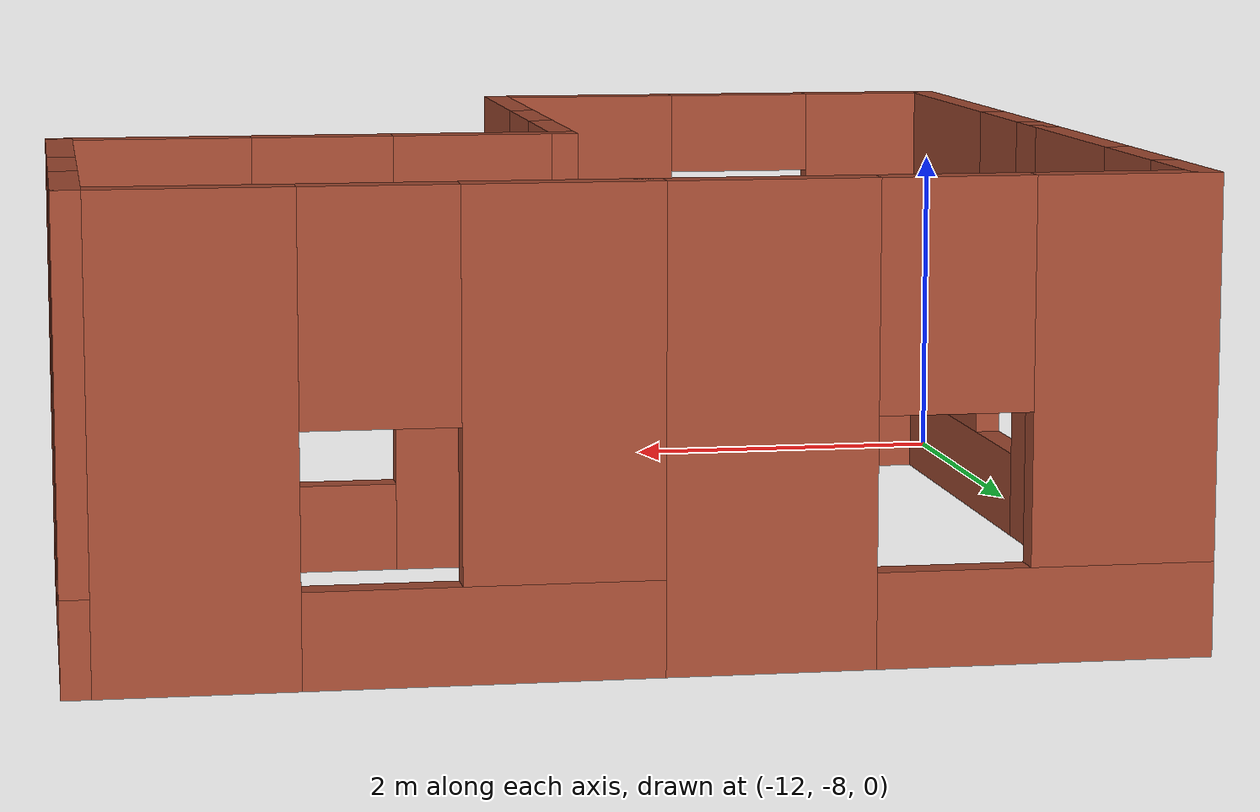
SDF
<?xml version='1.0'?>
<sdf version='1.6'>
  <model name='home.sdf'>
    <pose frame=''>-8.9356 -4.4642 0 0 -0 0</pose>
    <link name='Wall_0'>
      <pose frame=''>-2.85 1.425 0 0 -0 -1.5708</pose>
      <visual name='Wall_0_Visual_0'>
        <pose frame=''>-1.14136 0 1.25 0 -0 0</pose>
        <geometry>
          <box>
            <size>0.71728 0.15 2.5</size>
          </box>
        </geometry>
        <material>
          <script>
            <uri>file://media/materials/scripts/gazebo.material</uri>
            <name>Gazebo/Bricks</name>
          </script>
          <ambient>1 1 1 1</ambient>
        </material>
        <meta>
          <layer>0</layer>
        </meta>
      </visual>
      <collision name='Wall_0_Collision_0'>
        <geometry>
          <box>
            <size>0.71728 0.15 2.5</size>
          </box>
        </geometry>
        <pose frame=''>-1.14136 0 1.25 0 -0 0</pose>
      </collision>
      <visual name='Wall_0_Visual_1'>
        <pose frame=''>0.35864 0 0.25 0 -0 0</pose>
        <geometry>
          <box>
            <size>2.28272 0.15 0.5</size>
          </box>
        </geometry>
        <material>
          <script>
            <uri>file://media/materials/scripts/gazebo.material</uri>
            <name>Gazebo/Bricks</name>
          </script>
          <ambient>1 1 1 1</ambient>
        </material>
        <meta>
          <layer>0</layer>
        </meta>
      </visual>
      <collision name='Wall_0_Collision_1'>
        <geometry>
          <box>
            <size>2.28272 0.15 0.5</size>
          </box>
        </geometry>
        <pose frame=''>0.35864 0 0.25 0 -0 0</pose>
      </collision>
      <visual name='Wall_0_Visual_2'>
        <pose frame=''>0.75864 0 1.5 0 -0 0</pose>
        <geometry>
          <box>
            <size>1.48272 0.15 2</size>
          </box>
        </geometry>
        <material>
          <script>
            <uri>file://media/materials/scripts/gazebo.material</uri>
            <name>Gazebo/Bricks</name>
          </script>
          <ambient>1 1 1 1</ambient>
        </material>
        <meta>
          <layer>0</layer>
        </meta>
      </visual>
      <collision name='Wall_0_Collision_2'>
        <geometry>
          <box>
            <size>1.48272 0.15 2</size>
          </box>
        </geometry>
        <pose frame=''>0.75864 0 1.5 0 -0 0</pose>
      </collision>
      <visual name='Wall_0_Visual_3'>
        <pose frame=''>-0.38272 0 1.9 0 -0 0</pose>
        <geometry>
          <box>
            <size>0.8 0.15 1.2</size>
          </box>
        </geometry>
        <material>
          <script>
            <uri>file://media/materials/scripts/gazebo.material</uri>
            <name>Gazebo/Bricks</name>
          </script>
          <ambient>1 1 1 1</ambient>
        </material>
        <meta>
          <layer>0</layer>
        </meta>
      </visual>
      <collision name='Wall_0_Collision_3'>
        <geometry>
          <box>
            <size>0.8 0.15 1.2</size>
          </box>
        </geometry>
        <pose frame=''>-0.38272 0 1.9 0 -0 0</pose>
      </collision>
    </link>
    <link name='Wall_10'>
      <pose frame=''>1.425 2.85 0 0 -0 3.14159</pose>
      <visual name='Wall_10_Visual_0'>
        <pose frame=''>-0.910917 0 1.25 0 -0 0</pose>
        <geometry>
          <box>
            <size>1.17816 0.15 2.5</size>
          </box>
        </geometry>
        <material>
          <script>
            <uri>file://media/materials/scripts/gazebo.material</uri>
            <name>Gazebo/Bricks</name>
          </script>
          <ambient>1 1 1 1</ambient>
        </material>
        <meta>
          <layer>0</layer>
        </meta>
      </visual>
      <collision name='Wall_10_Collision_0'>
        <geometry>
          <box>
            <size>1.17816 0.15 2.5</size>
          </box>
        </geometry>
        <pose frame=''>-0.910917 0 1.25 0 -0 0</pose>
      </collision>
      <visual name='Wall_10_Visual_1'>
        <pose frame=''>0.589083 0 0.25 0 -0 0</pose>
        <geometry>
          <box>
            <size>1.82184 0.15 0.5</size>
          </box>
        </geometry>
        <material>
          <script>
            <uri>file://media/materials/scripts/gazebo.material</uri>
            <name>Gazebo/Bricks</name>
          </script>
          <ambient>1 1 1 1</ambient>
        </material>
        <meta>
          <layer>0</layer>
        </meta>
      </visual>
      <collision name='Wall_10_Collision_1'>
        <geometry>
          <box>
            <size>1.82184 0.15 0.5</size>
          </box>
        </geometry>
        <pose frame=''>0.589083 0 0.25 0 -0 0</pose>
      </collision>
      <visual name='Wall_10_Visual_2'>
        <pose frame=''>0.989083 0 1.5 0 -0 0</pose>
        <geometry>
          <box>
            <size>1.02184 0.15 2</size>
          </box>
        </geometry>
        <material>
          <script>
            <uri>file://media/materials/scripts/gazebo.material</uri>
            <name>Gazebo/Bricks</name>
          </script>
          <ambient>1 1 1 1</ambient>
        </material>
        <meta>
          <layer>0</layer>
        </meta>
      </visual>
      <collision name='Wall_10_Collision_2'>
        <geometry>
          <box>
            <size>1.02184 0.15 2</size>
          </box>
        </geometry>
        <pose frame=''>0.989083 0 1.5 0 -0 0</pose>
      </collision>
      <visual name='Wall_10_Visual_3'>
        <pose frame=''>0.078165 0 1.9 0 -0 0</pose>
        <geometry>
          <box>
            <size>0.8 0.15 1.2</size>
          </box>
        </geometry>
        <material>
          <script>
            <uri>file://media/materials/scripts/gazebo.material</uri>
            <name>Gazebo/Bricks</name>
          </script>
          <ambient>1 1 1 1</ambient>
        </material>
        <meta>
          <layer>0</layer>
        </meta>
      </visual>
      <collision name='Wall_10_Collision_3'>
        <geometry>
          <box>
            <size>0.8 0.15 1.2</size>
          </box>
        </geometry>
        <pose frame=''>0.078165 0 1.9 0 -0 0</pose>
      </collision>
    </link>
    <link name='Wall_3'>
      <pose frame=''>-1.425 2.85 0 0 -0 3.14159</pose>
      <visual name='Wall_3_Visual_0'>
        <pose frame=''>-0.884242 0 1.25 0 -0 0</pose>
        <geometry>
          <box>
            <size>1.23152 0.15 2.5</size>
          </box>
        </geometry>
        <material>
          <script>
            <uri>file://media/materials/scripts/gazebo.material</uri>
            <name>Gazebo/Bricks</name>
          </script>
          <ambient>1 1 1 1</ambient>
        </material>
        <meta>
          <layer>0</layer>
        </meta>
      </visual>
      <collision name='Wall_3_Collision_0'>
        <geometry>
          <box>
            <size>1.23152 0.15 2.5</size>
          </box>
        </geometry>
        <pose frame=''>-0.884242 0 1.25 0 -0 0</pose>
      </collision>
      <visual name='Wall_3_Visual_1'>
        <pose frame=''>0.615758 0 0.25 0 -0 0</pose>
        <geometry>
          <box>
            <size>1.76848 0.15 0.5</size>
          </box>
        </geometry>
        <material>
          <script>
            <uri>file://media/materials/scripts/gazebo.material</uri>
            <name>Gazebo/Bricks</name>
          </script>
          <ambient>1 1 1 1</ambient>
        </material>
        <meta>
          <layer>0</layer>
        </meta>
      </visual>
      <collision name='Wall_3_Collision_1'>
        <geometry>
          <box>
            <size>1.76848 0.15 0.5</size>
          </box>
        </geometry>
        <pose frame=''>0.615758 0 0.25 0 -0 0</pose>
      </collision>
      <visual name='Wall_3_Visual_2'>
        <pose frame=''>1.01576 0 1.5 0 -0 0</pose>
        <geometry>
          <box>
            <size>0.968484 0.15 2</size>
          </box>
        </geometry>
        <material>
          <script>
            <uri>file://media/materials/scripts/gazebo.material</uri>
            <name>Gazebo/Bricks</name>
          </script>
          <ambient>1 1 1 1</ambient>
        </material>
        <meta>
          <layer>0</layer>
        </meta>
      </visual>
      <collision name='Wall_3_Collision_2'>
        <geometry>
          <box>
            <size>0.968484 0.15 2</size>
          </box>
        </geometry>
        <pose frame=''>1.01576 0 1.5 0 -0 0</pose>
      </collision>
      <visual name='Wall_3_Visual_3'>
        <pose frame=''>0.131516 0 1.9 0 -0 0</pose>
        <geometry>
          <box>
            <size>0.8 0.15 1.2</size>
          </box>
        </geometry>
        <material>
          <script>
            <uri>file://media/materials/scripts/gazebo.material</uri>
            <name>Gazebo/Bricks</name>
          </script>
          <ambient>1 1 1 1</ambient>
        </material>
        <meta>
          <layer>0</layer>
        </meta>
      </visual>
      <collision name='Wall_3_Collision_3'>
        <geometry>
          <box>
            <size>0.8 0.15 1.2</size>
          </box>
        </geometry>
        <pose frame=''>0.131516 0 1.9 0 -0 0</pose>
      </collision>
    </link>
    <link name='Wall_5'>
      <pose frame=''>-2.85 -1.425 0 0 -0 -1.5708</pose>
      <visual name='Wall_5_Visual_0'>
        <pose frame=''>-1.29833 0 1.25 0 -0 0</pose>
        <geometry>
          <box>
            <size>0.403339 0.15 2.5</size>
          </box>
        </geometry>
        <material>
          <script>
            <uri>file://media/materials/scripts/gazebo.material</uri>
            <name>Gazebo/Bricks</name>
          </script>
          <ambient>1 1 1 1</ambient>
        </material>
        <meta>
          <layer>0</layer>
        </meta>
      </visual>
      <collision name='Wall_5_Collision_0'>
        <geometry>
          <box>
            <size>0.403339 0.15 2.5</size>
          </box>
        </geometry>
        <pose frame=''>-1.29833 0 1.25 0 -0 0</pose>
      </collision>
      <visual name='Wall_5_Visual_1'>
        <pose frame=''>0.20167 0 0.25 0 -0 0</pose>
        <geometry>
          <box>
            <size>2.59666 0.15 0.5</size>
          </box>
        </geometry>
        <material>
          <script>
            <uri>file://media/materials/scripts/gazebo.material</uri>
            <name>Gazebo/Bricks</name>
          </script>
          <ambient>1 1 1 1</ambient>
        </material>
        <meta>
          <layer>0</layer>
        </meta>
      </visual>
      <collision name='Wall_5_Collision_1'>
        <geometry>
          <box>
            <size>2.59666 0.15 0.5</size>
          </box>
        </geometry>
        <pose frame=''>0.20167 0 0.25 0 -0 0</pose>
      </collision>
      <visual name='Wall_5_Visual_2'>
        <pose frame=''>0.60167 0 1.5 0 -0 0</pose>
        <geometry>
          <box>
            <size>1.79666 0.15 2</size>
          </box>
        </geometry>
        <material>
          <script>
            <uri>file://media/materials/scripts/gazebo.material</uri>
            <name>Gazebo/Bricks</name>
          </script>
          <ambient>1 1 1 1</ambient>
        </material>
        <meta>
          <layer>0</layer>
        </meta>
      </visual>
      <collision name='Wall_5_Collision_2'>
        <geometry>
          <box>
            <size>1.79666 0.15 2</size>
          </box>
        </geometry>
        <pose frame=''>0.60167 0 1.5 0 -0 0</pose>
      </collision>
      <visual name='Wall_5_Visual_3'>
        <pose frame=''>-0.696661 0 1.9 0 -0 0</pose>
        <geometry>
          <box>
            <size>0.8 0.15 1.2</size>
          </box>
        </geometry>
        <material>
          <script>
            <uri>file://media/materials/scripts/gazebo.material</uri>
            <name>Gazebo/Bricks</name>
          </script>
          <ambient>1 1 1 1</ambient>
        </material>
        <meta>
          <layer>0</layer>
        </meta>
      </visual>
      <collision name='Wall_5_Collision_3'>
        <geometry>
          <box>
            <size>0.8 0.15 1.2</size>
          </box>
        </geometry>
        <pose frame=''>-0.696661 0 1.9 0 -0 0</pose>
      </collision>
    </link>
    <link name='Wall_6'>
      <pose frame=''>-1.425 -2.85 0 0 -0 0</pose>
      <visual name='Wall_6_Visual_0'>
        <pose frame=''>-1.05825 0 1.25 0 -0 0</pose>
        <geometry>
          <box>
            <size>0.883505 0.15 2.5</size>
          </box>
        </geometry>
        <material>
          <script>
            <uri>file://media/materials/scripts/gazebo.material</uri>
            <name>Gazebo/Bricks</name>
          </script>
          <ambient>1 1 1 1</ambient>
        </material>
        <meta>
          <layer>0</layer>
        </meta>
      </visual>
      <collision name='Wall_6_Collision_0'>
        <geometry>
          <box>
            <size>0.883505 0.15 2.5</size>
          </box>
        </geometry>
        <pose frame=''>-1.05825 0 1.25 0 -0 0</pose>
      </collision>
      <visual name='Wall_6_Visual_1'>
        <pose frame=''>0.891752 0 1.25 0 -0 0</pose>
        <geometry>
          <box>
            <size>1.2165 0.15 2.5</size>
          </box>
        </geometry>
        <material>
          <script>
            <uri>file://media/materials/scripts/gazebo.material</uri>
            <name>Gazebo/Bricks</name>
          </script>
          <ambient>1 1 1 1</ambient>
        </material>
        <meta>
          <layer>0</layer>
        </meta>
      </visual>
      <collision name='Wall_6_Collision_1'>
        <geometry>
          <box>
            <size>1.2165 0.15 2.5</size>
          </box>
        </geometry>
        <pose frame=''>0.891752 0 1.25 0 -0 0</pose>
      </collision>
      <visual name='Wall_6_Visual_2'>
        <pose frame=''>-0.166495 0 2.25 0 -0 0</pose>
        <geometry>
          <box>
            <size>0.9 0.15 0.5</size>
          </box>
        </geometry>
        <material>
          <script>
            <uri>file://media/materials/scripts/gazebo.material</uri>
            <name>Gazebo/Bricks</name>
          </script>
          <ambient>1 1 1 1</ambient>
        </material>
        <meta>
          <layer>0</layer>
        </meta>
      </visual>
      <collision name='Wall_6_Collision_2'>
        <geometry>
          <box>
            <size>0.9 0.15 0.5</size>
          </box>
        </geometry>
        <pose frame=''>-0.166495 0 2.25 0 -0 0</pose>
      </collision>
    </link>
    <link name='Wall_7'>
      <pose frame=''>-0 -1.425 0 0 -0 1.5708</pose>
      <visual name='Wall_7_Visual_0'>
        <pose frame=''>-0.881511 0 1.25 0 -0 0</pose>
        <geometry>
          <box>
            <size>1.23698 0.15 2.5</size>
          </box>
        </geometry>
        <material>
          <script>
            <uri>file://media/materials/scripts/gazebo.material</uri>
            <name>Gazebo/Bricks</name>
          </script>
          <ambient>1 1 1 1</ambient>
        </material>
        <meta>
          <layer>0</layer>
        </meta>
      </visual>
      <collision name='Wall_7_Collision_0'>
        <geometry>
          <box>
            <size>1.23698 0.15 2.5</size>
          </box>
        </geometry>
        <pose frame=''>-0.881511 0 1.25 0 -0 0</pose>
      </collision>
      <visual name='Wall_7_Visual_1'>
        <pose frame=''>0.618489 0 0.25 0 -0 0</pose>
        <geometry>
          <box>
            <size>1.76302 0.15 0.5</size>
          </box>
        </geometry>
        <material>
          <script>
            <uri>file://media/materials/scripts/gazebo.material</uri>
            <name>Gazebo/Bricks</name>
          </script>
          <ambient>1 1 1 1</ambient>
        </material>
        <meta>
          <layer>0</layer>
        </meta>
      </visual>
      <collision name='Wall_7_Collision_1'>
        <geometry>
          <box>
            <size>1.76302 0.15 0.5</size>
          </box>
        </geometry>
        <pose frame=''>0.618489 0 0.25 0 -0 0</pose>
      </collision>
      <visual name='Wall_7_Visual_2'>
        <pose frame=''>1.01849 0 1.5 0 -0 0</pose>
        <geometry>
          <box>
            <size>0.963021 0.15 2</size>
          </box>
        </geometry>
        <material>
          <script>
            <uri>file://media/materials/scripts/gazebo.material</uri>
            <name>Gazebo/Bricks</name>
          </script>
          <ambient>1 1 1 1</ambient>
        </material>
        <meta>
          <layer>0</layer>
        </meta>
      </visual>
      <collision name='Wall_7_Collision_2'>
        <geometry>
          <box>
            <size>0.963021 0.15 2</size>
          </box>
        </geometry>
        <pose frame=''>1.01849 0 1.5 0 -0 0</pose>
      </collision>
      <visual name='Wall_7_Visual_3'>
        <pose frame=''>0.136979 0 1.9 0 -0 0</pose>
        <geometry>
          <box>
            <size>0.8 0.15 1.2</size>
          </box>
        </geometry>
        <material>
          <script>
            <uri>file://media/materials/scripts/gazebo.material</uri>
            <name>Gazebo/Bricks</name>
          </script>
          <ambient>1 1 1 1</ambient>
        </material>
        <meta>
          <layer>0</layer>
        </meta>
      </visual>
      <collision name='Wall_7_Collision_3'>
        <geometry>
          <box>
            <size>0.8 0.15 1.2</size>
          </box>
        </geometry>
        <pose frame=''>0.136979 0 1.9 0 -0 0</pose>
      </collision>
    </link>
    <link name='Wall_8'>
      <pose frame=''>1.425 -0 0 0 -0 0</pose>
      <visual name='Wall_8_Visual_0'>
        <pose frame=''>-0.971592 0 1.25 0 -0 0</pose>
        <geometry>
          <box>
            <size>1.05682 0.15 2.5</size>
          </box>
        </geometry>
        <material>
          <script>
            <uri>file://media/materials/scripts/gazebo.material</uri>
            <name>Gazebo/Bricks</name>
          </script>
          <ambient>1 1 1 1</ambient>
        </material>
        <meta>
          <layer>0</layer>
        </meta>
      </visual>
      <collision name='Wall_8_Collision_0'>
        <geometry>
          <box>
            <size>1.05682 0.15 2.5</size>
          </box>
        </geometry>
        <pose frame=''>-0.971592 0 1.25 0 -0 0</pose>
      </collision>
      <visual name='Wall_8_Visual_1'>
        <pose frame=''>0.528408 0 0.25 0 -0 0</pose>
        <geometry>
          <box>
            <size>1.94318 0.15 0.5</size>
          </box>
        </geometry>
        <material>
          <script>
            <uri>file://media/materials/scripts/gazebo.material</uri>
            <name>Gazebo/Bricks</name>
          </script>
          <ambient>1 1 1 1</ambient>
        </material>
        <meta>
          <layer>0</layer>
        </meta>
      </visual>
      <collision name='Wall_8_Collision_1'>
        <geometry>
          <box>
            <size>1.94318 0.15 0.5</size>
          </box>
        </geometry>
        <pose frame=''>0.528408 0 0.25 0 -0 0</pose>
      </collision>
      <visual name='Wall_8_Visual_2'>
        <pose frame=''>0.928408 0 1.5 0 -0 0</pose>
        <geometry>
          <box>
            <size>1.14318 0.15 2</size>
          </box>
        </geometry>
        <material>
          <script>
            <uri>file://media/materials/scripts/gazebo.material</uri>
            <name>Gazebo/Bricks</name>
          </script>
          <ambient>1 1 1 1</ambient>
        </material>
        <meta>
          <layer>0</layer>
        </meta>
      </visual>
      <collision name='Wall_8_Collision_2'>
        <geometry>
          <box>
            <size>1.14318 0.15 2</size>
          </box>
        </geometry>
        <pose frame=''>0.928408 0 1.5 0 -0 0</pose>
      </collision>
      <visual name='Wall_8_Visual_3'>
        <pose frame=''>-0.043185 0 1.9 0 -0 0</pose>
        <geometry>
          <box>
            <size>0.8 0.15 1.2</size>
          </box>
        </geometry>
        <material>
          <script>
            <uri>file://media/materials/scripts/gazebo.material</uri>
            <name>Gazebo/Bricks</name>
          </script>
          <ambient>1 1 1 1</ambient>
        </material>
        <meta>
          <layer>0</layer>
        </meta>
      </visual>
      <collision name='Wall_8_Collision_3'>
        <geometry>
          <box>
            <size>0.8 0.15 1.2</size>
          </box>
        </geometry>
        <pose frame=''>-0.043185 0 1.9 0 -0 0</pose>
      </collision>
    </link>
    <link name='Wall_9'>
      <pose frame=''>2.85 1.425 0 0 -0 1.5708</pose>
      <visual name='Wall_9_Visual_0'>
        <pose frame=''>-0.898561 0 1.25 0 -0 0</pose>
        <geometry>
          <box>
            <size>1.20288 0.15 2.5</size>
          </box>
        </geometry>
        <material>
          <script>
            <uri>file://media/materials/scripts/gazebo.material</uri>
            <name>Gazebo/Bricks</name>
          </script>
          <ambient>1 1 1 1</ambient>
        </material>
        <meta>
          <layer>0</layer>
        </meta>
      </visual>
      <collision name='Wall_9_Collision_0'>
        <geometry>
          <box>
            <size>1.20288 0.15 2.5</size>
          </box>
        </geometry>
        <pose frame=''>-0.898561 0 1.25 0 -0 0</pose>
      </collision>
      <visual name='Wall_9_Visual_1'>
        <pose frame=''>0.601439 0 0.25 0 -0 0</pose>
        <geometry>
          <box>
            <size>1.79712 0.15 0.5</size>
          </box>
        </geometry>
        <material>
          <script>
            <uri>file://media/materials/scripts/gazebo.material</uri>
            <name>Gazebo/Bricks</name>
          </script>
          <ambient>1 1 1 1</ambient>
        </material>
        <meta>
          <layer>0</layer>
        </meta>
      </visual>
      <collision name='Wall_9_Collision_1'>
        <geometry>
          <box>
            <size>1.79712 0.15 0.5</size>
          </box>
        </geometry>
        <pose frame=''>0.601439 0 0.25 0 -0 0</pose>
      </collision>
      <visual name='Wall_9_Visual_2'>
        <pose frame=''>1.00144 0 1.5 0 -0 0</pose>
        <geometry>
          <box>
            <size>0.997121 0.15 2</size>
          </box>
        </geometry>
        <material>
          <script>
            <uri>file://media/materials/scripts/gazebo.material</uri>
            <name>Gazebo/Bricks</name>
          </script>
          <ambient>1 1 1 1</ambient>
        </material>
        <meta>
          <layer>0</layer>
        </meta>
      </visual>
      <collision name='Wall_9_Collision_2'>
        <geometry>
          <box>
            <size>0.997121 0.15 2</size>
          </box>
        </geometry>
        <pose frame=''>1.00144 0 1.5 0 -0 0</pose>
      </collision>
      <visual name='Wall_9_Visual_3'>
        <pose frame=''>0.102879 0 1.9 0 -0 0</pose>
        <geometry>
          <box>
            <size>0.8 0.15 1.2</size>
          </box>
        </geometry>
        <material>
          <script>
            <uri>file://media/materials/scripts/gazebo.material</uri>
            <name>Gazebo/Bricks</name>
          </script>
          <ambient>1 1 1 1</ambient>
        </material>
        <meta>
          <layer>0</layer>
        </meta>
      </visual>
      <collision name='Wall_9_Collision_3'>
        <geometry>
          <box>
            <size>0.8 0.15 1.2</size>
          </box>
        </geometry>
        <pose frame=''>0.102879 0 1.9 0 -0 0</pose>
      </collision>
    </link>
    <static>1</static>
  </model>
</sdf>
